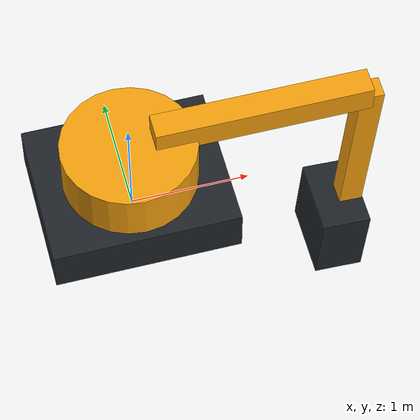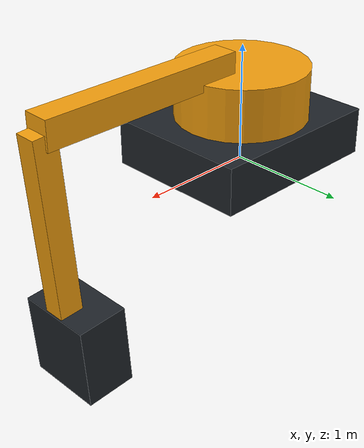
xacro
<?xml version="1.0"?>
<!-- Copyright 2026 tb20e_ros2 contributors -->
<!-- SPDX-License-Identifier: Apache-2.0 -->
<robot xmlns:xacro="http://www.ros.org/wiki/xacro" name="tb20e">
  <xacro:arg name="state_timeout_sec" default="0.10"/>
  <xacro:arg name="initial_feedback_wait_sec" default="2.0"/>
  <xacro:arg name="feedback_limit_tolerance_deg" default="2.0"/>
  <xacro:arg name="max_feedback_velocity_deg_s" default="180.0"/>
  <xacro:arg name="feedback_velocity_jitter_tolerance_sec" default="0.03"/>
  <xacro:arg name="feedback_velocity_limit_check_enabled" default="false"/>
  <xacro:arg name="command_output_enabled" default="true"/>
  <xacro:arg name="active_axis_mask_topic" default=""/>

  <xacro:property name="boom_position_min_deg" value="-83.0"/>
  <xacro:property name="boom_position_max_deg" value="48.0"/>
  <xacro:property name="arm_position_min_deg" value="32.0"/>
  <xacro:property name="arm_position_max_deg" value="155.0"/>
  <xacro:property name="bucket_position_min_deg" value="-31.0"/>
  <xacro:property name="bucket_position_max_deg" value="159.0"/>
  <xacro:property name="joint_velocity_limit_deg_s" value="100.0"/>

  <xacro:arg name="swing_state_topic" default="/current_swing_angle"/>
  <xacro:arg name="swing_command_topic" default="/manipulated_swing_lever"/>
  <xacro:arg name="swing_lever_sign" default="1.0"/>
  <xacro:arg name="swing_lever_min" default="-100.0"/>
  <xacro:arg name="swing_lever_max" default="100.0"/>
  <xacro:arg name="swing_lever_positive_min" default="0.0"/>
  <xacro:arg name="swing_lever_negative_min" default="0.0"/>
  <xacro:arg name="swing_lever_start" default="2.0"/>
  <xacro:arg name="swing_lever_stop" default="1.0"/>

  <xacro:arg name="boom_state_topic" default="/current_boom_angle"/>
  <xacro:arg name="boom_command_topic" default="/manipulated_boom_lever"/>
  <xacro:arg name="boom_lever_sign" default="-1.0"/>
  <xacro:arg name="boom_lever_min" default="-100.0"/>
  <xacro:arg name="boom_lever_max" default="100.0"/>
  <xacro:arg name="boom_lever_positive_min" default="0.0"/>
  <xacro:arg name="boom_lever_negative_min" default="0.0"/>
  <xacro:arg name="boom_lever_start" default="2.0"/>
  <xacro:arg name="boom_lever_stop" default="1.0"/>
  <xacro:arg name="boom_feedback_limit_check_enabled" default="false"/>

  <xacro:arg name="arm_state_topic" default="/current_arm_angle"/>
  <xacro:arg name="arm_command_topic" default="/manipulated_arm_lever"/>
  <xacro:arg name="arm_lever_sign" default="1.0"/>
  <xacro:arg name="arm_lever_min" default="-100.0"/>
  <xacro:arg name="arm_lever_max" default="100.0"/>
  <xacro:arg name="arm_lever_positive_min" default="0.0"/>
  <xacro:arg name="arm_lever_negative_min" default="0.0"/>
  <xacro:arg name="arm_lever_start" default="2.0"/>
  <xacro:arg name="arm_lever_stop" default="1.0"/>
  <xacro:arg name="arm_feedback_limit_check_enabled" default="false"/>

  <xacro:arg name="bucket_state_topic" default="/current_bucket_angle"/>
  <xacro:arg name="bucket_command_topic" default="/manipulated_bucket_lever"/>
  <xacro:arg name="bucket_lever_sign" default="1.0"/>
  <xacro:arg name="bucket_lever_min" default="-100.0"/>
  <xacro:arg name="bucket_lever_max" default="100.0"/>
  <xacro:arg name="bucket_lever_positive_min" default="0.0"/>
  <xacro:arg name="bucket_lever_negative_min" default="0.0"/>
  <xacro:arg name="bucket_lever_start" default="2.0"/>
  <xacro:arg name="bucket_lever_stop" default="1.0"/>
  <xacro:arg name="bucket_feedback_limit_check_enabled" default="false"/>

  <xacro:include filename="$(find tb20e_control)/urdf/tb20e.ros2_control.xacro"/>

  <material name="tb20e_yellow">
    <color rgba="0.95 0.62 0.05 1.0"/>
  </material>
  <material name="tb20e_dark">
    <color rgba="0.12 0.14 0.16 1.0"/>
  </material>

  <link name="base_link">
    <visual>
      <origin xyz="0 0 0.20"/>
      <geometry>
        <box size="1.55 1.25 0.40"/>
      </geometry>
      <material name="tb20e_dark"/>
    </visual>
  </link>

  <link name="swing_link">
    <visual>
      <origin xyz="0 0 0.22"/>
      <geometry>
        <cylinder radius="0.56" length="0.44"/>
      </geometry>
      <material name="tb20e_yellow"/>
    </visual>
  </link>

  <joint name="swing_joint" type="continuous">
    <parent link="base_link"/>
    <child link="swing_link"/>
    <origin xyz="0 0 0.40"/>
    <axis xyz="0 0 1"/>
    <limit effort="100.0" velocity="${radians(joint_velocity_limit_deg_s)}"/>
    <dynamics damping="0.05" friction="0.02"/>
  </joint>

  <link name="boom_link">
    <visual>
      <origin xyz="0.90 0 0" rpy="0 0 0"/>
      <geometry>
        <box size="1.80 0.22 0.24"/>
      </geometry>
      <material name="tb20e_yellow"/>
    </visual>
  </link>

  <joint name="boom_joint" type="revolute">
    <parent link="swing_link"/>
    <child link="boom_link"/>
    <origin xyz="0.20 0 0.50"/>
    <axis xyz="0 1 0"/>
    <!-- -83 deg to 48 deg -->
    <limit
      lower="${radians(boom_position_min_deg)}"
      upper="${radians(boom_position_max_deg)}"
      effort="100.0"
      velocity="${radians(joint_velocity_limit_deg_s)}"/>
    <dynamics damping="0.05" friction="0.02"/>
  </joint>

  <link name="arm_link">
    <visual>
      <origin xyz="0.75 0 0"/>
      <geometry>
        <box size="1.50 0.18 0.20"/>
      </geometry>
      <material name="tb20e_yellow"/>
    </visual>
  </link>

  <joint name="arm_joint" type="revolute">
    <parent link="boom_link"/>
    <child link="arm_link"/>
    <origin xyz="1.80 0 0"/>
    <axis xyz="0 1 0"/>
    <!-- 32 deg to 155 deg -->
    <limit
      lower="${radians(arm_position_min_deg)}"
      upper="${radians(arm_position_max_deg)}"
      effort="100.0"
      velocity="${radians(joint_velocity_limit_deg_s)}"/>
    <dynamics damping="0.05" friction="0.02"/>
  </joint>

  <link name="bucket_link">
    <visual>
      <origin xyz="0.35 0 -0.10"/>
      <geometry>
        <box size="0.70 0.65 0.42"/>
      </geometry>
      <material name="tb20e_dark"/>
    </visual>
  </link>

  <joint name="bucket_joint" type="revolute">
    <parent link="arm_link"/>
    <child link="bucket_link"/>
    <origin xyz="1.50 0 0"/>
    <axis xyz="0 1 0"/>
    <!-- -31 deg to 159 deg -->
    <limit
      lower="${radians(bucket_position_min_deg)}"
      upper="${radians(bucket_position_max_deg)}"
      effort="100.0"
      velocity="${radians(joint_velocity_limit_deg_s)}"/>
    <dynamics damping="0.05" friction="0.02"/>
  </joint>

  <xacro:tb20e_ros2_control
    name="Tb20eLeverSystem"
    boom_position_min_deg="${boom_position_min_deg}"
    boom_position_max_deg="${boom_position_max_deg}"
    arm_position_min_deg="${arm_position_min_deg}"
    arm_position_max_deg="${arm_position_max_deg}"
    bucket_position_min_deg="${bucket_position_min_deg}"
    bucket_position_max_deg="${bucket_position_max_deg}"/>
</robot>
